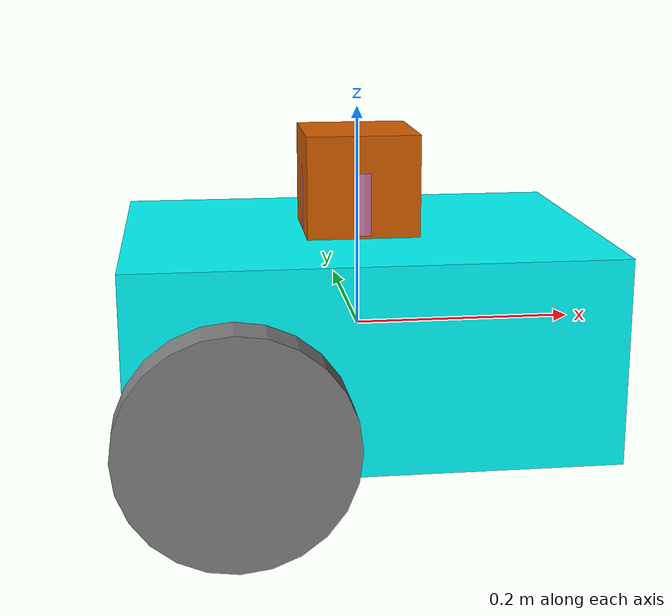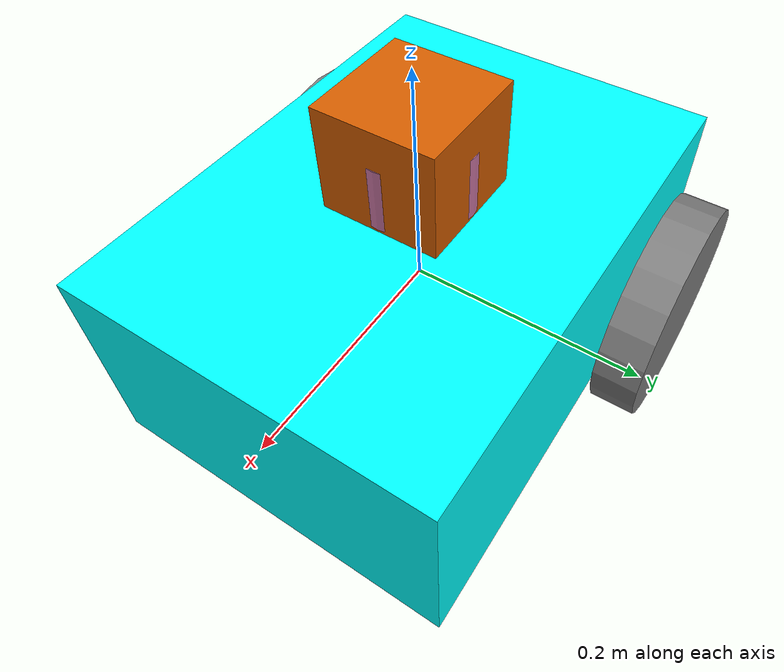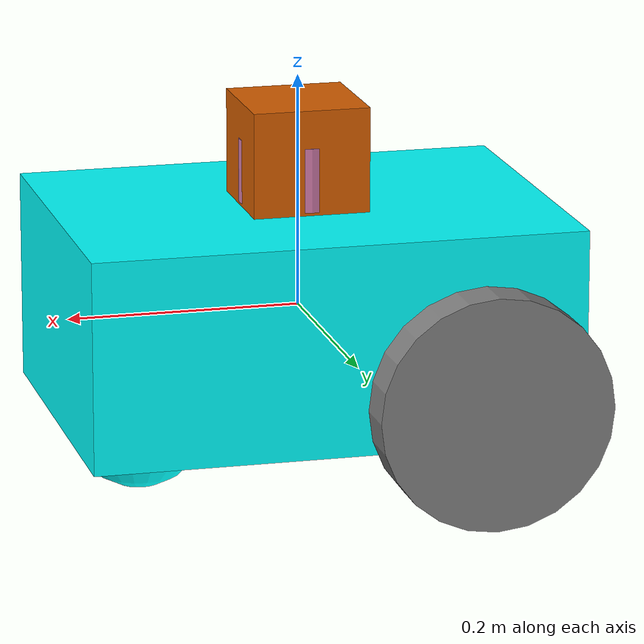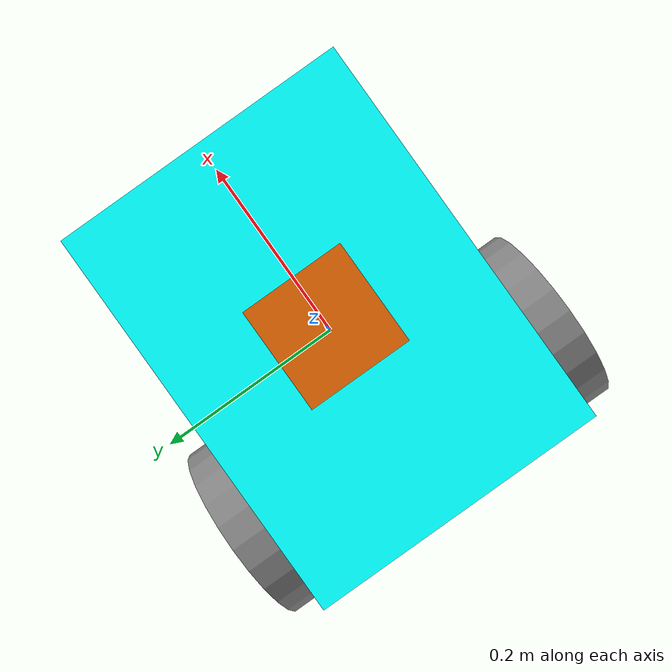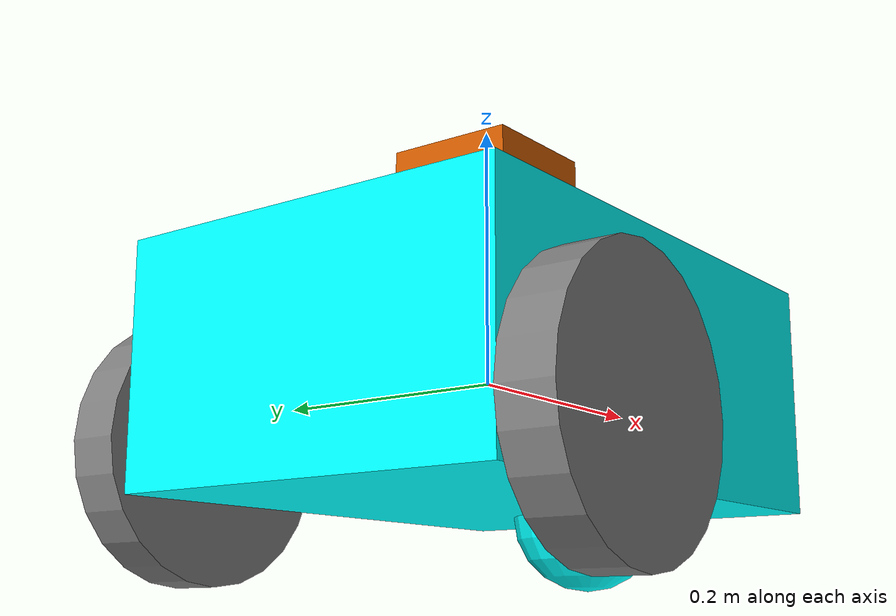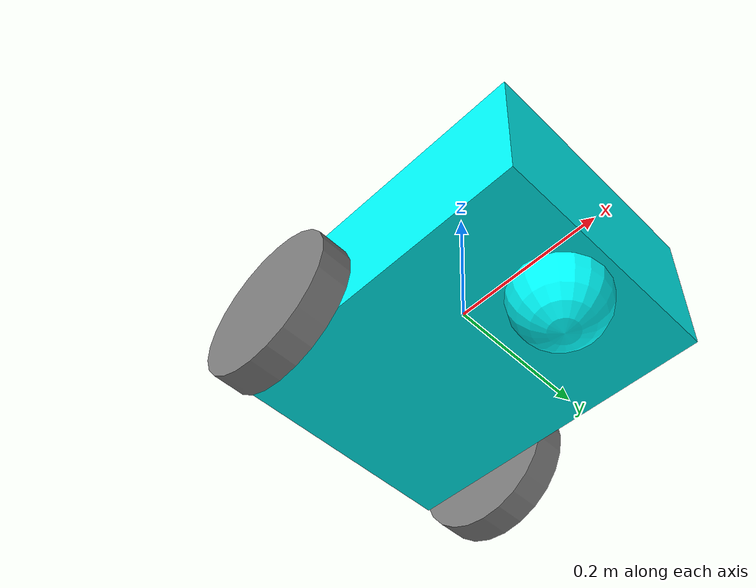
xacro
<?xml version="1.0"?>
<robot name="sam_bot" xmlns:xacro="http://ros.org/wiki/xacro">

  <!-- Define robot constants -->
  <xacro:property name="base_width" value="0.31"/>
  <xacro:property name="base_length" value="0.42"/>
  <xacro:property name="base_height" value="0.18"/>

  <xacro:property name="wheel_radius" value="0.10"/>
  <xacro:property name="wheel_width" value="0.04"/>
  <xacro:property name="wheel_ygap" value="0.025"/>
  <xacro:property name="wheel_zoff" value="0.05"/>
  <xacro:property name="wheel_xoff" value="0.12"/>

  <xacro:property name="caster_xoff" value="0.14"/>

  <!-- Define inertial property macros  -->
  <xacro:macro name="box_inertia" params="m w h d">
    <inertial>
      <origin xyz="0 0 0" rpy="${pi/2} 0 ${pi/2}"/>
      <mass value="${m}"/>
      <inertia ixx="${(m/12) * (h*h + d*d)}" ixy="0.0" ixz="0.0" iyy="${(m/12) * (w*w + d*d)}" iyz="0.0" izz="${(m/12) * (w*w + h*h)}"/>
    </inertial>
  </xacro:macro>

  <xacro:macro name="cylinder_inertia" params="m r h">
    <inertial>
      <origin xyz="0 0 0" rpy="${pi/2} 0 0" />
      <mass value="${m}"/>
      <inertia ixx="${(m/12) * (3*r*r + h*h)}" ixy = "0" ixz = "0" iyy="${(m/12) * (3*r*r + h*h)}" iyz = "0" izz="${(m/2) * (r*r)}"/>
    </inertial>
  </xacro:macro>

  <xacro:macro name="cylinder_friction" params="mu1 mu2 slip1 slip2">
    <surface>
      <friction>
        <ode>
          <mu1>${mu1}</mu1>
          <mu2>${mu2}</mu2>
          <slip1>${slip1}</slip1>
          <slip2>${slip2}</slip2>
        </ode>
      </friction>
    </surface>
  </xacro:macro>

  <xacro:macro name="sphere_inertia" params="m r">
    <inertial>
      <mass value="${m}"/>
      <inertia ixx="${(2/5) * m * (r*r)}" ixy="0.0" ixz="0.0" iyy="${(2/5) * m * (r*r)}" iyz="0.0" izz="${(2/5) * m * (r*r)}"/>
    </inertial>
  </xacro:macro>
  <!-- Robot Base -->
  <link name="base_link">
    <visual>
      <geometry>
        <box size="${base_length} ${base_width} ${base_height}"/>
      </geometry>
      <material name="Cyan">
        <color rgba="0 1.0 1.0 1.0"/>
      </material>
    </visual>
        <collision>
      <geometry>
        <box size="${base_length} ${base_width} ${base_height}"/>
      </geometry>
    </collision>
  </link>

    <!-- Robot Footprint -->
  <link name="base_footprint">
         <xacro:box_inertia m="15" w="${base_width}" d="${base_length}" h="${base_height}"/>
  </link>

  <joint name="base_joint" type="fixed">
    <parent link="base_link"/>
    <child link="base_footprint"/>
    <origin xyz="0.0 0.0 ${-(wheel_radius+wheel_zoff)}" rpy="0 0 0"/>
  </joint>

    <!-- Wheels -->
  <xacro:macro name="wheel" params="prefix x_reflect y_reflect">
    <link name="${prefix}_link">
      <visual>
        <origin xyz="0 0 0" rpy="${pi/2} 0 0"/>
        <geometry>
            <cylinder radius="${wheel_radius}" length="${wheel_width}"/>
        </geometry>
        <material name="Gray">
          <color rgba="0.5 0.5 0.5 1.0"/>
        </material>
      </visual>
      <collision>
        <origin xyz="0 0 0" rpy="${pi/2} 0 0"/>
        <geometry>
          <cylinder radius="${wheel_radius}" length="${wheel_width}"/>
        </geometry>
        <xacro:cylinder_friction mu1="1.1" mu2="1.1" slip1="0.01" slip2="0.01"/>
      </collision>

      <xacro:cylinder_inertia m="5" r="${wheel_radius}" h="${wheel_width}"/>
    </link>

    <joint name="${prefix}_joint" type="continuous">
      <parent link="base_link"/>
      <child link="${prefix}_link"/>
      <origin xyz="${x_reflect*wheel_xoff} ${y_reflect*(base_width/2+wheel_ygap)} ${-wheel_zoff}" rpy="0 0 0"/>
      <axis xyz="0 1 0"/>
    </joint>
  </xacro:macro>

  <xacro:wheel prefix="drivewhl_l" x_reflect="-1" y_reflect="1" />
  <xacro:wheel prefix="drivewhl_r" x_reflect="-1" y_reflect="-1" />

    <!-- Caster Wheel -->
  <link name="front_caster">
    <visual>
      <geometry>
        <sphere radius="${(wheel_radius+wheel_zoff-(base_height/2))}"/>
      </geometry>
      <material name="Cyan">
        <color rgba="0 1.0 1.0 1.0"/>
      </material>
    </visual>
        <collision>
      <origin xyz="0 0 0" rpy="0 0 0"/>
      <geometry>
        <sphere radius="${(wheel_radius+wheel_zoff-(base_height/2))}"/>
      </geometry>
    </collision>

    <xacro:sphere_inertia m="0.5" r="${(wheel_radius+wheel_zoff-(base_height/2))}"/>
  </link>

  <joint name="caster_joint" type="fixed">
    <parent link="base_link"/>
    <child link="front_caster"/>
    <origin xyz="${caster_xoff} 0.0 ${-(base_height/2)}" rpy="0 0 0"/>
  </joint>

  <link name="imu_link">
    <visual>
      <geometry>
        <box size="0.1 0.1 0.1"/>
      </geometry>
    </visual>

    <collision>
      <geometry>
        <box size="0.1 0.1 0.1"/>
      </geometry>
    </collision>

    <xacro:box_inertia m="0.1" w="0.1" d="0.1" h="0.1"/>
  </link>

 <gazebo reference="imu_link">
    <sensor name="imu_sensor" type="imu">
    <plugin filename="libgazebo_ros_imu_sensor.so" name="imu_plugin">
        <ros>
          <remapping>~/out:=imu</remapping>
        </ros>
        <initial_orientation_as_reference>false</initial_orientation_as_reference>
      </plugin>
      <always_on>true</always_on>
      <update_rate>100</update_rate>
      <visualize>true</visualize>
      <imu>
        <angular_velocity>
          <x>
            <noise type="gaussian">
              <mean>0.0</mean>
              <stddev>2e-4</stddev>
              <bias_mean>0.0000075</bias_mean>
              <bias_stddev>0.0000008</bias_stddev>
            </noise>
          </x>
          <y>
            <noise type="gaussian">
              <mean>0.0</mean>
              <stddev>2e-4</stddev>
              <bias_mean>0.0000075</bias_mean>
              <bias_stddev>0.0000008</bias_stddev>
            </noise>
          </y>
          <z>
            <noise type="gaussian">
              <mean>0.0</mean>
              <stddev>2e-4</stddev>
              <bias_mean>0.0000075</bias_mean>
              <bias_stddev>0.0000008</bias_stddev>
            </noise>
          </z>
        </angular_velocity>
        <linear_acceleration>
          <x>
            <noise type="gaussian">
              <mean>0.0</mean>
              <stddev>1.7e-2</stddev>
              <bias_mean>0.1</bias_mean>
              <bias_stddev>0.001</bias_stddev>
            </noise>
          </x>
          <y>
            <noise type="gaussian">
              <mean>0.0</mean>
              <stddev>1.7e-2</stddev>
              <bias_mean>0.1</bias_mean>
              <bias_stddev>0.001</bias_stddev>
            </noise>
          </y>
          <z>
            <noise type="gaussian">
              <mean>0.0</mean>
              <stddev>1.7e-2</stddev>
              <bias_mean>0.1</bias_mean>
              <bias_stddev>0.001</bias_stddev>
            </noise>
          </z>
        </linear_acceleration>
      </imu>
    </sensor>
  </gazebo>

  <gazebo>
    <plugin name='diff_drive' filename='libgazebo_ros_diff_drive.so'>
      <ros>
      </ros>

      <!-- wheels -->
      <left_joint>drivewhl_l_joint</left_joint>
      <right_joint>drivewhl_r_joint</right_joint>

      <!-- kinematics -->
      <wheel_separation>0.4</wheel_separation>
      <wheel_diameter>0.2</wheel_diameter>

      <!-- limits -->
      <max_wheel_torque>50</max_wheel_torque>
      <max_wheel_acceleration>1.5</max_wheel_acceleration>

      <!-- output -->
      <publish_odom>true</publish_odom>
      <publish_odom_tf>false</publish_odom_tf>
      <publish_wheel_tf>true</publish_wheel_tf>

      <odometry_frame>odom</odometry_frame>
      <robot_base_frame>base_link</robot_base_frame>
    </plugin>
  </gazebo>

  <link name="lidar_link">
    <inertial>
      <origin xyz="0 0 0" rpy="0 0 0"/>
      <mass value="0.125"/>
      <inertia ixx="0.001"  ixy="0"  ixz="0" iyy="0.001" iyz="0" izz="0.001" />
    </inertial>

    <collision>
      <origin xyz="0 0 0" rpy="0 0 0"/>
      <geometry>
        <cylinder radius="0.0508" length="0.055"/>
      </geometry>
    </collision>

    <visual>
      <origin xyz="0 0 0" rpy="0 0 0"/>
      <geometry>
        <cylinder radius="0.0508" length="0.055"/>
      </geometry>
    </visual>
  </link>

  <link name="lidar_link2d">
    <inertial>
      <origin xyz="0 0 0" rpy="0 0 0"/>
      <mass value="0.125"/>
      <inertia ixx="0.001"  ixy="0"  ixz="0" iyy="0.001" iyz="0" izz="0.001" />
    </inertial>

    <collision>
      <origin xyz="0 0 0" rpy="0 0 0"/>
      <geometry>
        <cylinder radius="0.0508" length="0.055"/>
      </geometry>
    </collision>

    <visual>
      <origin xyz="0 0 0" rpy="0 0 0"/>
      <geometry>
        <cylinder radius="0.0508" length="0.055"/>
      </geometry>
    </visual>
  </link>

  <joint name="imu_joint" type="fixed">
    <parent link="lidar_link"/>
    <child link="imu_link"/>
    <origin xyz="0 0 0.01"/>
  </joint>

  <joint name="lidar_joint" type="fixed">
    <parent link="base_link"/>
    <child link="lidar_link"/>
    <origin xyz="0 0 0.12" rpy="0 0 0"/>
  </joint>

  <joint name="lidar_joint2d" type="fixed">
    <parent link="base_link"/>
    <child link="lidar_link2d"/>
    <origin xyz="0 0 0.12" rpy="0 0 0"/>
  </joint>

  <gazebo reference="lidar_link">
    <sensor name="lidar" type="ray">
      <always_on>true</always_on>
      <visualize>false</visualize>
      <update_rate>10</update_rate>
      <ray>
        <scan>
          <horizontal>
            <samples>360</samples>
            <resolution>1.000000</resolution>
            <min_angle>0.000000</min_angle>
            <max_angle>6.280000</max_angle>
          </horizontal>
          <vertical>
            <samples>32</samples>
            <resolution>1.000000</resolution>
            <min_angle>-0.41</min_angle>
            <max_angle>0.1</max_angle>
          </vertical>
        </scan>
        <range>
          <min>0.3</min>
          <max>100</max>
          <resolution>0.07</resolution>
        </range>
        <noise>
          <type>gaussian</type>
          <mean>0.0</mean>
          <stddev>0.01</stddev>
        </noise>
      </ray>
      <plugin name="lidar_3d" filename="libgazebo_ros_ray_sensor.so">
        <ros>
          <remapping>~/out:=pointcloud</remapping>
        </ros>
        <output_type>sensor_msgs/PointCloud2</output_type>
        <frame_name>lidar_link</frame_name>
      </plugin>
    </sensor>
  </gazebo>

  <gazebo reference="lidar_link2d">
    <sensor name="lidar2d" type="ray">
      <always_on>true</always_on>
      <visualize>false</visualize>
      <update_rate>10</update_rate>
      <ray>
        <scan>
          <horizontal>
            <samples>360</samples>
            <resolution>1.000000</resolution>
            <min_angle>0.000000</min_angle>
            <max_angle>6.280000</max_angle>
          </horizontal>
        </scan>
        <range>
          <min>0.3</min>
          <max>100</max>
          <resolution>0.07</resolution>
        </range>
        <noise>
          <type>gaussian</type>
          <mean>0.0</mean>
          <stddev>0.01</stddev>
        </noise>
      </ray>
      <plugin name="lidar_2d" filename="libgazebo_ros_ray_sensor.so">
        <ros>
          <remapping>~/out:=scan</remapping>
        </ros>
        <output_type>sensor_msgs/LaserScan</output_type>
        <frame_name>lidar_link2d</frame_name>
      </plugin>
    </sensor>
  </gazebo>

</robot>
